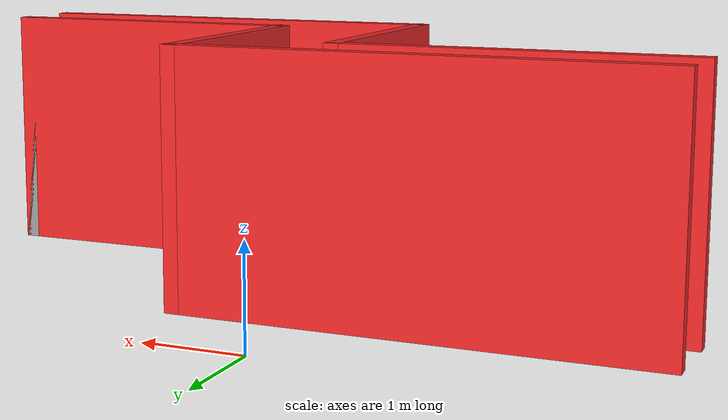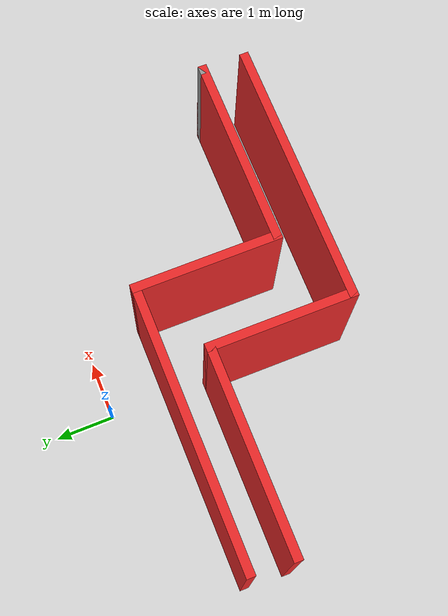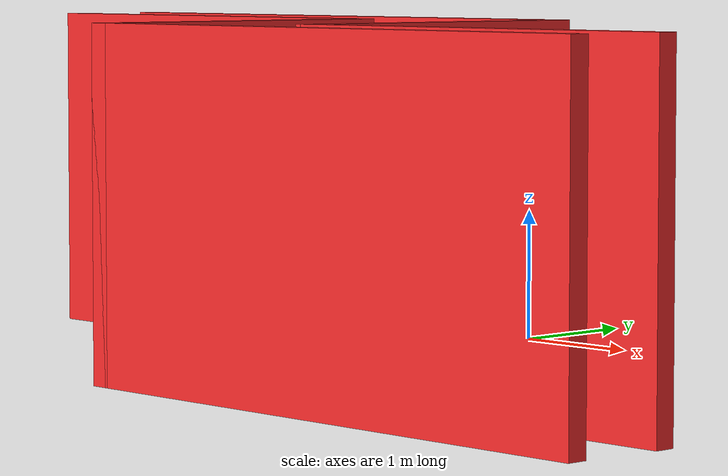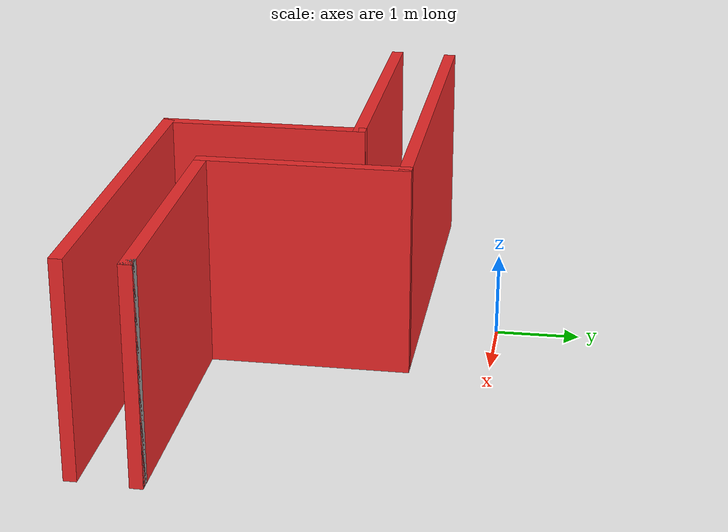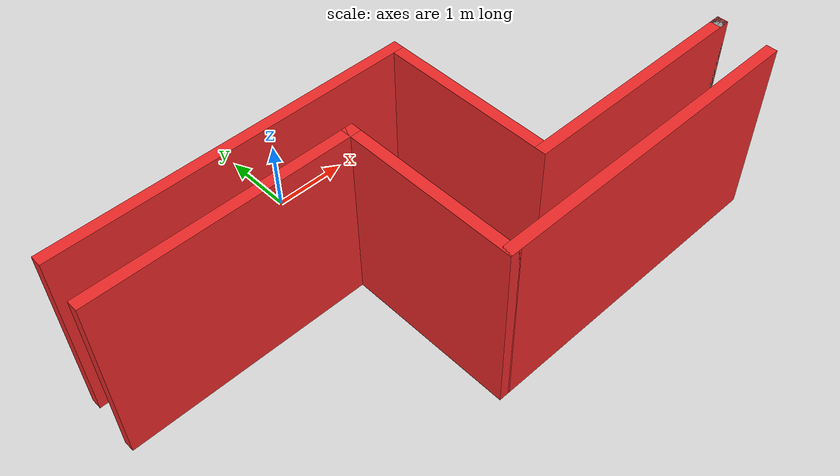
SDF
<?xml version='1.0'?>
<sdf version='1.7'>
  <model name='simulated—walking'>
    <pose>0.45 -2.0725 0 0 -0 0</pose>
    <link name='Wall_1'>
      <collision name='Wall_1_Collision'>
        <geometry>
          <box>
            <size>4.75 0.15 2.5</size>
          </box>
        </geometry>
        <pose>0 0 1.25 0 -0 0</pose>
      </collision>
      <visual name='Wall_1_Visual'>
        <pose>0 0 1.25 0 -0 0</pose>
        <geometry>
          <box>
            <size>4.75 0.15 2.5</size>
          </box>
        </geometry>
        <material>
          <script>
            <uri>file://media/materials/scripts/gazebo.material</uri>
            <name>Gazebo/Grey</name>
          </script>
          <ambient>0.937255 0.160784 0.160784 1</ambient>
        </material>
        <meta>
          <layer>0</layer>
        </meta>
      </visual>
      <pose>-1.53 1.0725 0 0 -0 0</pose>
    </link>
    <link name='Wall_2'>
      <collision name='Wall_2_Collision'>
        <geometry>
          <box>
            <size>2.5 0.15 2.5</size>
          </box>
        </geometry>
        <pose>0 0 1.25 0 -0 0</pose>
      </collision>
      <visual name='Wall_2_Visual'>
        <pose>0 0 1.25 0 -0 0</pose>
        <geometry>
          <box>
            <size>2.5 0.15 2.5</size>
          </box>
        </geometry>
        <material>
          <script>
            <uri>file://media/materials/scripts/gazebo.material</uri>
            <name>Gazebo/Grey</name>
          </script>
          <ambient>0.937255 0.160784 0.160784 1</ambient>
        </material>
        <meta>
          <layer>0</layer>
        </meta>
      </visual>
      <pose>0.77 -0.1025 0 0 -0 -1.5708</pose>
    </link>
    <link name='Wall_3'>
      <collision name='Wall_3_Collision'>
        <geometry>
          <box>
            <size>3.25 0.15 2.5</size>
          </box>
        </geometry>
        <pose>0 0 1.25 0 -0 0</pose>
      </collision>
      <visual name='Wall_3_Visual'>
        <pose>0 0 1.25 0 -0 0</pose>
        <geometry>
          <box>
            <size>3.25 0.15 2.5</size>
          </box>
        </geometry>
        <material>
          <script>
            <uri>file://media/materials/scripts/gazebo.material</uri>
            <name>Gazebo/Grey</name>
          </script>
          <ambient>0.937255 0.160784 0.160784 1</ambient>
        </material>
        <meta>
          <layer>0</layer>
        </meta>
      </visual>
      <pose>2.32 -1.2775 0 0 -0 0</pose>
    </link>
    <link name='Wall_4'>
      <collision name='Wall_4_Collision'>
        <geometry>
          <box>
            <size>0.15 0.15 2.5</size>
          </box>
        </geometry>
        <pose>0 0 1.25 0 -0 0</pose>
      </collision>
      <visual name='Wall_4_Visual'>
        <pose>0 0 1.25 0 -0 0</pose>
        <geometry>
          <box>
            <size>0.15 0.15 2.5</size>
          </box>
        </geometry>
        <material>
          <script>
            <uri>file://media/materials/scripts/gazebo.material</uri>
            <name>Gazebo/Grey</name>
          </script>
          <ambient>1 1 1 1</ambient>
        </material>
        <meta>
          <layer>0</layer>
        </meta>
      </visual>
      <pose>3.87 -1.2775 0 0 -0 0</pose>
    </link>
    <link name='Wall_5'>
      <collision name='Wall_5_Collision'>
        <geometry>
          <box>
            <size>0.15 0.15 2.5</size>
          </box>
        </geometry>
        <pose>0 0 1.25 0 -0 0</pose>
      </collision>
      <visual name='Wall_5_Visual'>
        <pose>0 0 1.25 0 -0 0</pose>
        <geometry>
          <box>
            <size>0.15 0.15 2.5</size>
          </box>
        </geometry>
        <material>
          <script>
            <uri>file://media/materials/scripts/gazebo.material</uri>
            <name>Gazebo/Grey</name>
          </script>
          <ambient>1 1 1 1</ambient>
        </material>
        <meta>
          <layer>0</layer>
        </meta>
      </visual>
      <pose>3.87 -1.2775 0 0 -0 0</pose>
    </link>
    <link name='Wall_7'>
      <collision name='Wall_7_Collision'>
        <geometry>
          <box>
            <size>3.5 0.15 2.5</size>
          </box>
        </geometry>
        <pose>0 0 1.25 0 -0 0</pose>
      </collision>
      <visual name='Wall_7_Visual'>
        <pose>0 0 1.25 0 -0 0</pose>
        <geometry>
          <box>
            <size>3.5 0.15 2.5</size>
          </box>
        </geometry>
        <material>
          <script>
            <uri>file://media/materials/scripts/gazebo.material</uri>
            <name>Gazebo/Grey</name>
          </script>
          <ambient>0.937255 0.160784 0.160784 1</ambient>
        </material>
        <meta>
          <layer>0</layer>
        </meta>
      </visual>
      <pose>-2.195 0.3525 0 0 -0 0</pose>
    </link>
    <link name='Wall_8'>
      <collision name='Wall_8_Collision'>
        <geometry>
          <box>
            <size>2.5 0.15 2.5</size>
          </box>
        </geometry>
        <pose>0 0 1.25 0 -0 0</pose>
      </collision>
      <visual name='Wall_8_Visual'>
        <pose>0 0 1.25 0 -0 0</pose>
        <geometry>
          <box>
            <size>2.5 0.15 2.5</size>
          </box>
        </geometry>
        <material>
          <script>
            <uri>file://media/materials/scripts/gazebo.material</uri>
            <name>Gazebo/Grey</name>
          </script>
          <ambient>0.937255 0.160784 0.160784 1</ambient>
        </material>
        <meta>
          <layer>0</layer>
        </meta>
      </visual>
      <pose>-0.52 -0.8225 0 0 -0 -1.5708</pose>
    </link>
    <link name='Wall_9'>
      <collision name='Wall_9_Collision'>
        <geometry>
          <box>
            <size>4.5 0.15 2.5</size>
          </box>
        </geometry>
        <pose>0 0 1.25 0 -0 0</pose>
      </collision>
      <visual name='Wall_9_Visual'>
        <pose>0 0 1.25 0 -0 0</pose>
        <geometry>
          <box>
            <size>4.5 0.15 2.5</size>
          </box>
        </geometry>
        <material>
          <script>
            <uri>file://media/materials/scripts/gazebo.material</uri>
            <name>Gazebo/Grey</name>
          </script>
          <ambient>0.937255 0.160784 0.160784 1</ambient>
        </material>
        <meta>
          <layer>0</layer>
        </meta>
      </visual>
      <pose>1.655 -1.9975 0 0 -0 0</pose>
    </link>
    <static>1</static>
  </model>
</sdf>
